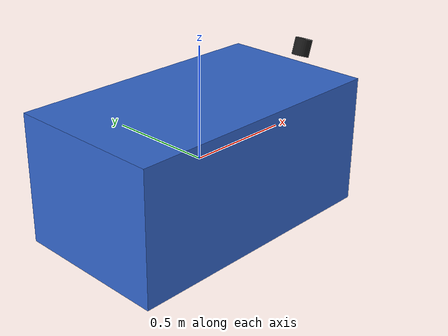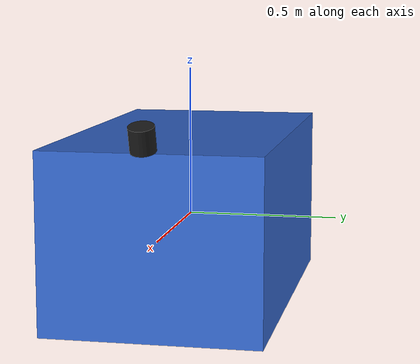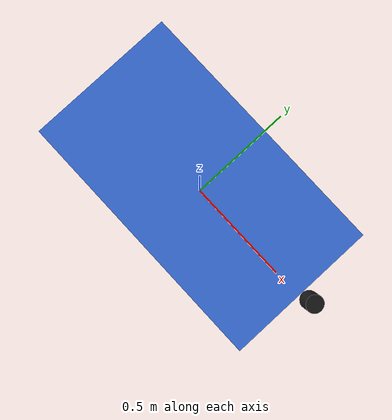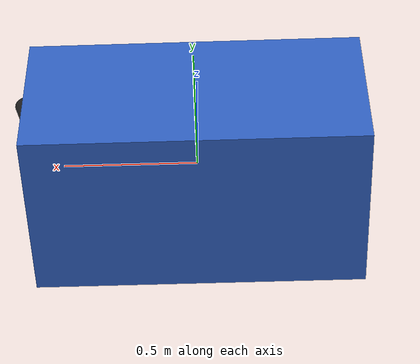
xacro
<?xml version="1.0"?>
<robot name="shredder" xmlns:xacro="http://www.ros.org/wiki/xacro">
  <!-- ========== MATERIALS ========== -->
  <material name="blue">
    <color rgba="0.2 0.4 0.8 1.0"/>
  </material>

  <material name="black">
    <color rgba="0.1 0.1 0.1 1.0"/>
  </material>

  <!-- ========== BASE LINK (Robot Chassis) ========== -->
  <link name="base_link">
    <visual>
      <geometry>
        <!-- Your robot dimensions: 134cm length x 70cm width x 60cm height -->
        <box size="1.24 0.70 0.58"/>
      </geometry>
      <!-- base_link is now at center of chassis (z=0 in base_link frame) -->
      <origin xyz="0.0 0.0 0.0" rpy="0 0 0"/>
      <material name="blue"/>
    </visual>

    <collision>
      <geometry>
        <box size="1.34 0.70 0.60"/>
      </geometry>
      <origin xyz="0.0 0.0 0.0" rpy="0 0 0"/>
    </collision>

    <!-- Inertial properties (estimated for ~100kg robot) -->
    <inertial>
      <mass value="100.0"/>
      <origin xyz="0.0 0.0 0.0" rpy="0 0 0"/>
      <inertia ixx="6.45" ixy="0.0" ixz="0.0" iyy="18.00" iyz="0.0" izz="21.77"/>
    </inertial>
  </link>

  <link name="os_lidar">
    <visual>
      <geometry>
        <cylinder radius="0.04" length="0.08"/>
      </geometry>
      <origin xyz="0 0 0" rpy="0 0 0"/>
      <material name="black"/>
    </visual>

    <collision>
      <geometry>
        <cylinder radius="0.04" length="0.08"/>
      </geometry>
      <origin xyz="0 0 0" rpy="0 0 0"/>
    </collision>

    <inertial>
      <mass value="0.5"/>
      <origin xyz="0 0 0" rpy="0 0 0"/>
      <inertia ixx="0.0001" ixy="0.0" ixz="0.0" iyy="0.0001" iyz="0.0" izz="0.0001"/>
    </inertial>
  </link>

  <joint name="lidar_joint" type="fixed">
    <parent link="base_link"/>
    <child link="os_lidar"/>
    <origin xyz="0.67 0 0.34" rpy="0 -0.314159 3.14159"/>
  </joint>

  <link name="os_imu">
    <visual>
      <geometry>
        <box size="0.02 0.02 0.01"/>
      </geometry>
      <origin xyz="0 0 0" rpy="0 0 0"/>
      <material name="blue"/>
    </visual>

    <collision>
      <geometry>
        <box size="0.02 0.02 0.01"/>
      </geometry>
      <origin xyz="0 0 0" rpy="0 0 0"/>
    </collision>

    <inertial>
      <mass value="0.015"/>
      <origin xyz="0 0 0" rpy="0 0 0"/>
      <inertia ixx="0.000001" ixy="0.0" ixz="0.0"
              iyy="0.000001" iyz="0.0" izz="0.000001"/>
    </inertial>
  </link>

  <joint name="imu_joint" type="fixed">
    <parent link="base_link"/>
    <child link="os_imu"/>
    <origin xyz="0.676253 0 0.347645" rpy="0 0.314159 0"/>
  </joint>

</robot>
